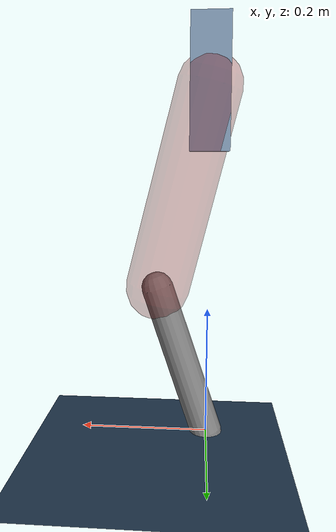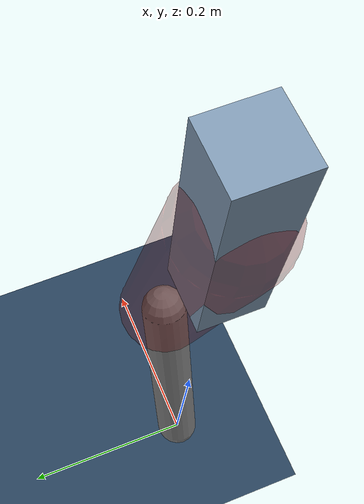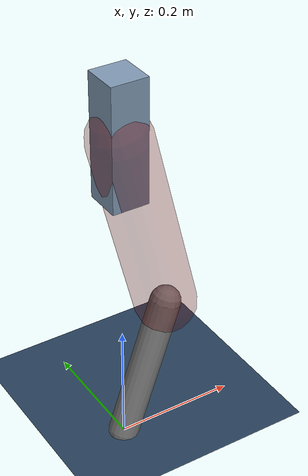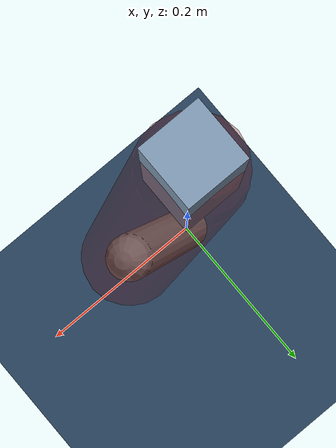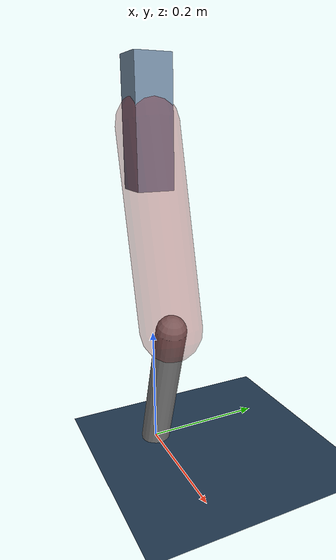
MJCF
<mujoco model="Hopper2D">
	<compiler inertiafromgeom="true" angle="radian" />
	<option timestep="0.001" integrator="implicit" cone="elliptic" solver="Newton" tolerance="1e-10" />

	<default>
		<geom contype="1" conaffinity="1" condim="3" friction="2 0.005 0.0001" solref="0.005 1" />
		<joint limited="true" damping="0.1" />
	</default>

	<asset>
		<texture name="skybox" type="skybox" builtin="gradient" rgb1=".4 .6 .8" rgb2="0 0 0" width="800" height="800" />
		<texture name="grid" type="2d" builtin="checker" rgb1=".1 .2 .3" rgb2=".2 .3 .4" width="300" height="300" mark="edge" markrgb=".2 .3 .4" />
		<material name="ground" texture="grid" texrepeat="1 1" texuniform="true" reflectance="0.1" />
		<material name="leg" rgba="0.5 0.6 0.7 1" />
	</asset>

	<worldbody>

		<geom name="floor" type="plane" size="5 5 0.25" material="ground" />

		<light directional="false" diffuse="0.8 0.8 0.8" specular="0.3 0.3 0.3" pos="0 0 2" dir="0 0 -1" />
		<light mode="targetbodycom" target="base" directional="false" diffuse="0.8 0.8 0.8" specular="0.3 0.3 0.3" pos="0 0 2" dir="0 0 -1" />

		<camera name="fixed" pos="0 -2 1" xyaxes="1 0 0 0 0 1" />
		<camera name="tracking" mode="trackcom" pos="0 -3 1" />

		<body name="root" pos="0 0 0.5460311025178035">
			<joint name="slide_x" type="slide" axis="1 0 0" range="-100 100" />
			<joint name="slide_z" type="slide" axis="0 0 1" range="0 10" />

			<body name="base" pos="0 0 0">
				<geom name="torso" type="box" size="0.03 0.03 0.1" mass="2.29" material="leg" />

				<body name="link1" pos="0 0 0" euler="0 1.3232951609718246 0">
					<joint type="hinge" axis="0 -1 0" pos="0 0 0" name="hinge1" limited="true" range="-3.14 3.14" stiffness="0" damping="0.1" />
					<geom name="thigh" type="capsule" fromto="0 0 0 0.3220519155635767 0 0" size="0.05" rgba="0.5 0 0 0.3" mass="1.0488453635780148" />

					<body name="link2" pos="0.3220519155635767 0 0" euler="0 0.5729656828817464 0">
						<joint type="hinge" axis="0 -1 0" pos="0 0 0" name="hinge2" limited="true" range="-3.14 3.14" stiffness="0" damping="0.1" />
						<geom name="shank" type="capsule" fromto="0 0 0 0.24674649988277644 0 0" size="0.025" mass="0.4398718498944988" />

					</body>
				</body>
			</body>
		</body>
	</worldbody>

	<actuator>
		<motor name="torque1" joint="hinge1" ctrlrange="-75.88703802990891 75.88703802990891" ctrllimited="true" gear="1" />
		<motor name="torque2" joint="hinge2" ctrlrange="-32.087883473235195 32.087883473235195" ctrllimited="true" gear="1" />
	</actuator>
</mujoco>
